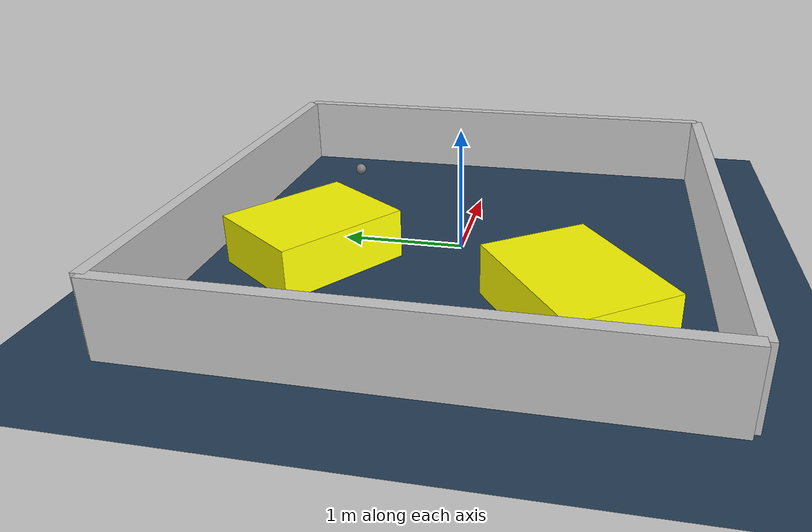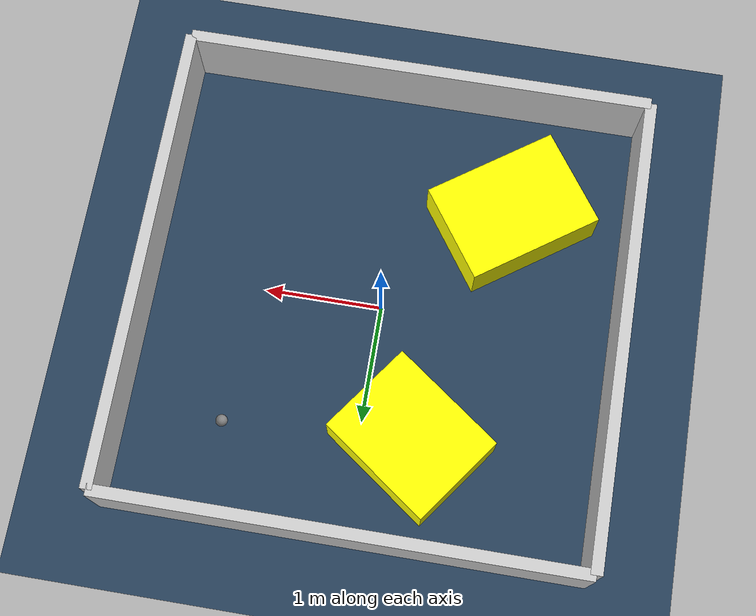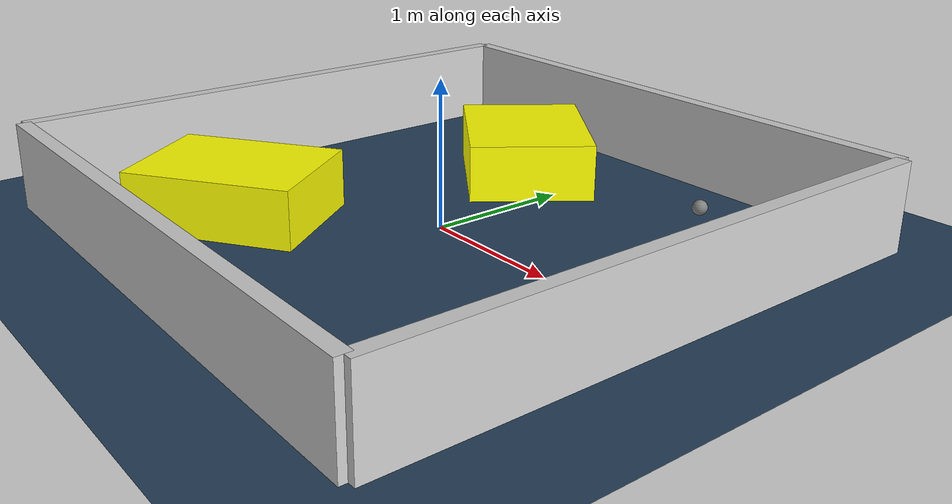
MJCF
<?xml version="1.0" ?>
<mujoco model="generated_environment">
  <option timestep="0.01" integrator="RK4" cone="elliptic"/>
  <default>
    <geom density="1"/>
  </default>
  <asset>
    <texture builtin="gradient" height="3072" rgb1="0.3 0.5 0.7" rgb2="0 0 0" type="skybox" width="512"/>
    <texture builtin="checker" height="300" mark="edge" markrgb="0.8 0.8 0.8" name="groundplane" rgb1="0.2 0.3 0.4" rgb2="0.1 0.2 0.3" type="2d" width="300"/>
    <material name="groundplane" reflectance="0.2" texrepeat="5 5" texture="groundplane" texuniform="true"/>
    <material name="robot" rgba="0.0 1.0 0.0 1"/>
  </asset>
  <worldbody>
    <light dir="0 0 -1" directional="true" pos="0 0 1.5"/>
    <geom condim="4" friction="1.0 0.005 0.001" material="groundplane" name="floor" size="0 0 0.05" type="plane"/>
    <body name="walls">
      <geom name="wall_1" condim="4" pos="-2.0 0.0 0.3" rgba="0.800000011920929 0.800000011920929 0.800000011920929 1.0" size="0.05 2.0 0.3" type="box"/>
      <geom name="wall_2" condim="4" pos="2.0 0.0 0.3" rgba="0.800000011920929 0.800000011920929 0.800000011920929 1.0" size="0.05 2.0 0.3" type="box"/>
      <geom name="wall_3" condim="4" pos="0.0 -2.0 0.3" rgba="0.800000011920929 0.800000011920929 0.800000011920929 1.0" size="2.0 0.05 0.3" type="box"/>
      <geom name="wall_4" condim="4" pos="0.0 2.0 0.3" rgba="0.800000011920929 0.800000011920929 0.800000011920929 1.0" size="2.0 0.05 0.3" type="box"/>
    </body>
    <body name="robot">
      <joint name="joint_x" type="slide" pos="0 0 0" axis="1 0 0"/>
      <joint name="joint_y" type="slide" pos="0 0 0" axis="0 1 0"/>
      <geom name="robot" type="sphere" pos="1.1252158179758305 1.2176949970501503 0.2" size="0.05" mass="5." friction="1.0 0.005 0.0001" condim="4"/>
      <site name="sensor_ball"/>
    </body>
    <body name="obstacle_1_movable">
      <geom name="obstacle_1_movable" condim="4" pos="-0.9713519653014646 -0.9740873643186452 0.2" euler="0 0 125.20198513701891" friction="1.0 0.005 0.001" rgba="1 1 0 1" size="0.43476367242459657 0.5899118740377653 0.2" type="box" mass="0.1"/>
      <joint type="free"/>
    </body>
    <body name="obstacle_2_movable">
      <geom name="obstacle_2_movable" condim="4" pos="-0.42968698160335617 1.1103742900478468 0.2" euler="0 0 144.1534454390636" friction="1.0 0.005 0.001" rgba="1 1 0 1" size="0.5372335753238635 0.43487398245435477 0.2" type="box" mass="0.1"/>
      <joint type="free"/>
    </body>
  </worldbody>
  <actuator>
    <motor name="actuator_x" joint="joint_x" gear="1" ctrlrange="-1 1"/>
    <motor name="actuator_y" joint="joint_y" gear="1" ctrlrange="-1 1"/>
  </actuator>
</mujoco>
